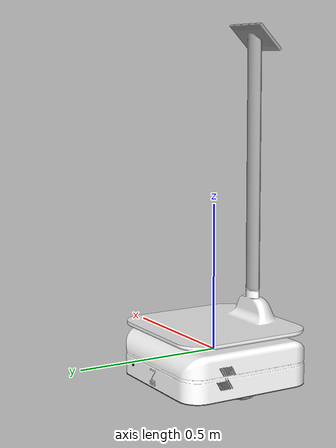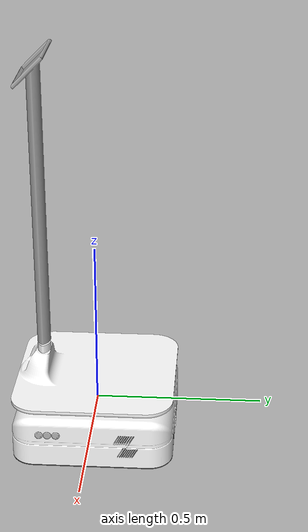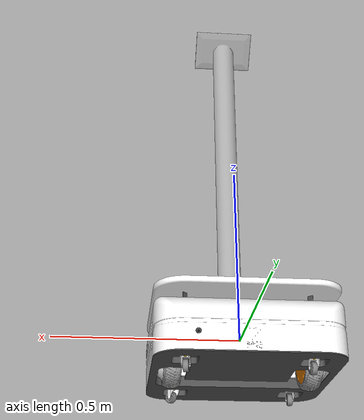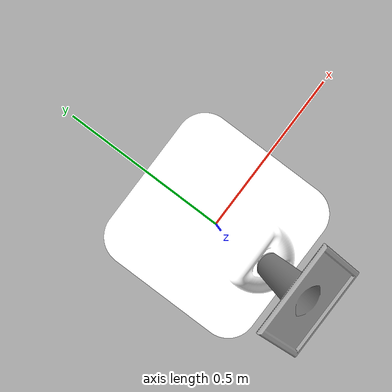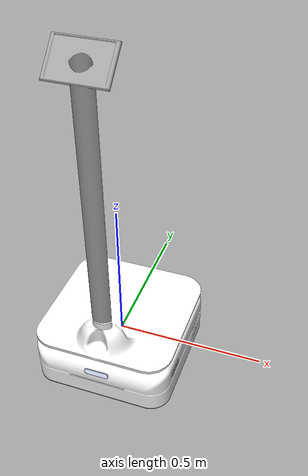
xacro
<?xml version="1.0" ?>
<!-- Generated using onshape-to-robot -->
<!-- Onshape https://cad.onshape.com/documents/7c4a8c9c2440f15a69d5cff4/w/82ee3b821ead890a7e99bd6c/e/7ba478e8d573ccb079962202 -->
<robot name="zero" xmlns:xacro="http://ros.org/wiki/xacro">

  <!-- Link base_sub -->
  <link name="base_sub">
    <inertial>
      <origin xyz="0.00360785 -0.00381731 -0.0662283" rpy="0 0 0"/>
      <mass value="12.3713"/>
      <inertia ixx="0.278501" ixy="0.00535023" ixz="-0.00306987" iyy="0.281975" iyz="0.00325242" izz="0.518455"/>
    </inertial>
    <!-- Part base -->
    <visual>
      <origin xyz="-0.16 0.16 -0.087" rpy="1.5708 -0 -0"/>
      <geometry>
        <mesh filename="package://zero_description/meshes/base.stl"/>
      </geometry>
      <material name="base_material">
        <color rgba="0.980392 0.713725 0.00392157 1"/>
      </material>
    </visual>
    <collision>
      <origin xyz="-0.16 0.16 -0.087" rpy="1.5708 -0 -0"/>
      <geometry>
        <mesh filename="package://zero_description/meshes/base.stl"/>
      </geometry>
    </collision>
    <!-- Part push_button___red__configuration_red -->
    <visual>
      <origin xyz="0.24 -0.15 0.00541176" rpy="0 1.5708 0"/>
      <geometry>
        <mesh filename="package://zero_description/meshes/push_button___red__configuration_red.stl"/>
      </geometry>
      <material name="push_button___red__configuration_red_material">
        <color rgba="0.701961 0.701961 0.701961 1"/>
      </material>
    </visual>
    <collision>
      <origin xyz="0.24 -0.15 0.00541176" rpy="0 1.5708 0"/>
      <geometry>
        <mesh filename="package://zero_description/meshes/push_button___red__configuration_red.stl"/>
      </geometry>
    </collision>
    <!-- Part base_2 -->
    <visual>
      <origin xyz="-0.16 -0.16 -0.087" rpy="1.5708 -0 -0"/>
      <geometry>
        <mesh filename="package://zero_description/meshes/base.stl"/>
      </geometry>
      <material name="base_2_material">
        <color rgba="0.980392 0.713725 0.00392157 1"/>
      </material>
    </visual>
    <collision>
      <origin xyz="-0.16 -0.16 -0.087" rpy="1.5708 -0 -0"/>
      <geometry>
        <mesh filename="package://zero_description/meshes/base.stl"/>
      </geometry>
    </collision>
    <!-- Part chassis_base -->
    <visual>
      <origin xyz="0 -0 -0.025" rpy="0 -0 -0"/>
      <geometry>
        <mesh filename="package://zero_description/meshes/chassis_base.stl"/>
      </geometry>
      <material name="chassis_base_material">
        <color rgba="0.301961 0.301961 0.301961 1"/>
      </material>
    </visual>
    <collision>
      <origin xyz="0 -0 -0.025" rpy="0 -0 -0"/>
      <geometry>
        <mesh filename="package://zero_description/meshes/chassis_base.stl"/>
      </geometry>
    </collision>
    <!-- Part push_button___red__configuration_red_2 -->
    <visual>
      <origin xyz="0.24 -0.125 0.00541176" rpy="0 1.5708 0"/>
      <geometry>
        <mesh filename="package://zero_description/meshes/push_button___red__configuration_red.stl"/>
      </geometry>
      <material name="push_button___red__configuration_red_2_material">
        <color rgba="0.701961 0.701961 0.701961 1"/>
      </material>
    </visual>
    <collision>
      <origin xyz="0.24 -0.125 0.00541176" rpy="0 1.5708 0"/>
      <geometry>
        <mesh filename="package://zero_description/meshes/push_button___red__configuration_red.stl"/>
      </geometry>
    </collision>
    <!-- Part component1 -->
    <visual>
      <origin xyz="0.135 0.242 -0.051618" rpy="-1.5708 -0 3.14159"/>
      <geometry>
        <mesh filename="package://zero_description/meshes/component1.stl"/>
      </geometry>
      <material name="component1_material">
        <color rgba="0.247059 0.247059 0.247059 1"/>
      </material>
    </visual>
    <collision>
      <origin xyz="0.135 0.242 -0.051618" rpy="-1.5708 -0 3.14159"/>
      <geometry>
        <mesh filename="package://zero_description/meshes/component1.stl"/>
      </geometry>
    </collision>
    <!-- Part push_button___red__configuration_red_3 -->
    <visual>
      <origin xyz="0.24 -0.1 0.00541176" rpy="0 1.5708 0"/>
      <geometry>
        <mesh filename="package://zero_description/meshes/push_button___red__configuration_red.stl"/>
      </geometry>
      <material name="push_button___red__configuration_red_3_material">
        <color rgba="0.701961 0.701961 0.701961 1"/>
      </material>
    </visual>
    <collision>
      <origin xyz="0.24 -0.1 0.00541176" rpy="0 1.5708 0"/>
      <geometry>
        <mesh filename="package://zero_description/meshes/push_button___red__configuration_red.stl"/>
      </geometry>
    </collision>
    <!-- Part part_1 -->
    <visual>
      <origin xyz="0 0 0.0269" rpy="-0 -0 3.14159"/>
      <geometry>
        <mesh filename="package://zero_description/meshes/part_1.stl"/>
      </geometry>
      <material name="part_1_material">
        <color rgba="0.34902 0.376471 0.4 1"/>
      </material>
    </visual>
    <collision>
      <origin xyz="0 0 0.0269" rpy="-0 -0 3.14159"/>
      <geometry>
        <mesh filename="package://zero_description/meshes/part_1.stl"/>
      </geometry>
    </collision>
    <!-- Part protective_cover -->
    <visual>
      <origin xyz="0 -0 -0.025" rpy="0 -0 -0"/>
      <geometry>
        <mesh filename="package://zero_description/meshes/protective_cover.stl"/>
      </geometry>
      <material name="protective_cover_material">
        <color rgba="1 1 1 1"/>
      </material>
    </visual>
    <collision>
      <origin xyz="0 -0 -0.025" rpy="0 -0 -0"/>
      <geometry>
        <mesh filename="package://zero_description/meshes/protective_cover.stl"/>
      </geometry>
    </collision>
    <!-- Part base_3 -->
    <visual>
      <origin xyz="0.16 0.16 -0.087" rpy="1.5708 -0 -0"/>
      <geometry>
        <mesh filename="package://zero_description/meshes/base.stl"/>
      </geometry>
      <material name="base_3_material">
        <color rgba="0.980392 0.713725 0.00392157 1"/>
      </material>
    </visual>
    <collision>
      <origin xyz="0.16 0.16 -0.087" rpy="1.5708 -0 -0"/>
      <geometry>
        <mesh filename="package://zero_description/meshes/base.stl"/>
      </geometry>
    </collision>
    <!-- Part payload_deck -->
    <visual>
      <origin xyz="0 -0 -0.0275" rpy="0 0 0"/>
      <geometry>
        <mesh filename="package://zero_description/meshes/payload_deck.stl"/>
      </geometry>
      <material name="payload_deck_material">
        <color rgba="1 1 1 1"/>
      </material>
    </visual>
    <collision>
      <origin xyz="0 -0 -0.0275" rpy="0 0 0"/>
      <geometry>
        <mesh filename="package://zero_description/meshes/payload_deck.stl"/>
      </geometry>
    </collision>
    <!-- Part base_4 -->
    <visual>
      <origin xyz="0.16 -0.16 -0.087" rpy="1.5708 -0 -0"/>
      <geometry>
        <mesh filename="package://zero_description/meshes/base.stl"/>
      </geometry>
      <material name="base_4_material">
        <color rgba="0.980392 0.713725 0.00392157 1"/>
      </material>
    </visual>
    <collision>
      <origin xyz="0.16 -0.16 -0.087" rpy="1.5708 -0 -0"/>
      <geometry>
        <mesh filename="package://zero_description/meshes/base.stl"/>
      </geometry>
    </collision>
    <!-- Part part_6 -->
    <visual>
      <origin xyz="0 -0.214788 -0.00197616" rpy="1.22173 0 -0"/>
      <geometry>
        <mesh filename="package://zero_description/meshes/part_6.stl"/>
      </geometry>
      <material name="part_6_material">
        <color rgba="0.866667 0.909804 1 1"/>
      </material>
    </visual>
    <collision>
      <origin xyz="0 -0.214788 -0.00197616" rpy="1.22173 0 -0"/>
      <geometry>
        <mesh filename="package://zero_description/meshes/part_6.stl"/>
      </geometry>
    </collision>
    <!-- Part part_1_2 -->
    <visual>
      <origin xyz="0 -0.214788 -0.00197616" rpy="1.22173 0 -0"/>
      <geometry>
        <mesh filename="package://zero_description/meshes/part_1__2.stl"/>
      </geometry>
      <material name="part_1_2_material">
        <color rgba="0.866667 0.909804 1 1"/>
      </material>
    </visual>
    <collision>
      <origin xyz="0 -0.214788 -0.00197616" rpy="1.22173 0 -0"/>
      <geometry>
        <mesh filename="package://zero_description/meshes/part_1__2.stl"/>
      </geometry>
    </collision>
    <!-- Part part_7 -->
    <visual>
      <origin xyz="0 -0.214788 -0.00197616" rpy="1.22173 0 -0"/>
      <geometry>
        <mesh filename="package://zero_description/meshes/part_7.stl"/>
      </geometry>
      <material name="part_7_material">
        <color rgba="0.866667 0.909804 1 1"/>
      </material>
    </visual>
    <collision>
      <origin xyz="0 -0.214788 -0.00197616" rpy="1.22173 0 -0"/>
      <geometry>
        <mesh filename="package://zero_description/meshes/part_7.stl"/>
      </geometry>
    </collision>
    <!-- Part part_2 -->
    <visual>
      <origin xyz="0 -0.214788 -0.00197616" rpy="1.22173 0 -0"/>
      <geometry>
        <mesh filename="package://zero_description/meshes/part_2.stl"/>
      </geometry>
      <material name="part_2_material">
        <color rgba="0.866667 0.909804 1 1"/>
      </material>
    </visual>
    <collision>
      <origin xyz="0 -0.214788 -0.00197616" rpy="1.22173 0 -0"/>
      <geometry>
        <mesh filename="package://zero_description/meshes/part_2.stl"/>
      </geometry>
    </collision>
    <!-- Part part_4 -->
    <visual>
      <origin xyz="0 -0.214788 -0.00197616" rpy="1.22173 0 -0"/>
      <geometry>
        <mesh filename="package://zero_description/meshes/part_4.stl"/>
      </geometry>
      <material name="part_4_material">
        <color rgba="0.866667 0.909804 1 1"/>
      </material>
    </visual>
    <collision>
      <origin xyz="0 -0.214788 -0.00197616" rpy="1.22173 0 -0"/>
      <geometry>
        <mesh filename="package://zero_description/meshes/part_4.stl"/>
      </geometry>
    </collision>
    <!-- Part part_5 -->
    <visual>
      <origin xyz="0 -0.214788 -0.00197616" rpy="1.22173 0 -0"/>
      <geometry>
        <mesh filename="package://zero_description/meshes/part_5.stl"/>
      </geometry>
      <material name="part_5_material">
        <color rgba="0.866667 0.909804 1 1"/>
      </material>
    </visual>
    <collision>
      <origin xyz="0 -0.214788 -0.00197616" rpy="1.22173 0 -0"/>
      <geometry>
        <mesh filename="package://zero_description/meshes/part_5.stl"/>
      </geometry>
    </collision>
    <!-- Part part_3 -->
    <visual>
      <origin xyz="0 -0.214788 -0.00197616" rpy="1.22173 0 -0"/>
      <geometry>
        <mesh filename="package://zero_description/meshes/part_3.stl"/>
      </geometry>
      <material name="part_3_material">
        <color rgba="0.866667 0.909804 1 1"/>
      </material>
    </visual>
    <collision>
      <origin xyz="0 -0.214788 -0.00197616" rpy="1.22173 0 -0"/>
      <geometry>
        <mesh filename="package://zero_description/meshes/part_3.stl"/>
      </geometry>
    </collision>
  </link>
  <!-- Frame payload (dummy link + fixed joint) -->
  <link name="payload">
    <origin xyz="0 0 0" rpy="0 -0 0"/>
    <inertial>
      <origin xyz="0 0 0" rpy="0 0 0"/>
      <mass value="1e-9"/>
      <inertia ixx="0" ixy="0" ixz="0" iyy="0" iyz="0" izz="0"/>
    </inertial>
  </link>
  <joint name="payload_frame" type="fixed">
    <origin xyz="-3.45e-10 -0.00737819 -0.0275" rpy="0 0 0"/>
    <parent link="base_sub"/>
    <child link="payload"/>
    <axis xyz="0 0 0"/>
  </joint>
  <!-- Link hub_motor_assembly -->
  <link name="hub_motor_assembly">
    <inertial>
      <origin xyz="5.29946e-06 1.95136e-05 0.0548583" rpy="0 0 0"/>
      <mass value="2.33473"/>
      <inertia ixx="0.00477916" ixy="1.76e-10" ixz="9.3291e-08" iyy="0.00477934" iyz="2.52658e-06" izz="0.00768357"/>
    </inertial>
    <!-- Part hub_rim_back -->
    <visual>
      <origin xyz="0 0 0.0326" rpy="-1.5708 -0 -2.70526"/>
      <geometry>
        <mesh filename="package://zero_description/meshes/hub_rim_back.stl"/>
      </geometry>
      <material name="hub_rim_back_material">
        <color rgba="0.972549 0.529412 0.00392157 1"/>
      </material>
    </visual>
    <collision>
      <origin xyz="0 0 0.0326" rpy="-1.5708 -0 -2.70526"/>
      <geometry>
        <mesh filename="package://zero_description/meshes/hub_rim_back.stl"/>
      </geometry>
    </collision>
    <!-- Part hub_rim_face -->
    <visual>
      <origin xyz="0 -0 0.0879" rpy="3.14159 0 0"/>
      <geometry>
        <mesh filename="package://zero_description/meshes/hub_rim_face.stl"/>
      </geometry>
      <material name="hub_rim_face_material">
        <color rgba="0.917647 0.917647 0.917647 1"/>
      </material>
    </visual>
    <collision>
      <origin xyz="0 -0 0.0879" rpy="3.14159 0 0"/>
      <geometry>
        <mesh filename="package://zero_description/meshes/hub_rim_face.stl"/>
      </geometry>
    </collision>
    <!-- Part shaft -->
    <visual>
      <origin xyz="0 0 -0.0255" rpy="1.5708 0 0"/>
      <geometry>
        <mesh filename="package://zero_description/meshes/shaft.stl"/>
      </geometry>
      <material name="shaft_material">
        <color rgba="0.498039 0.498039 0.498039 1"/>
      </material>
    </visual>
    <collision>
      <origin xyz="0 0 -0.0255" rpy="1.5708 0 0"/>
      <geometry>
        <mesh filename="package://zero_description/meshes/shaft.stl"/>
      </geometry>
    </collision>
    <!-- Part hub_tire -->
    <visual>
      <origin xyz="0 -0 0.05295" rpy="1.5708 0 0"/>
      <geometry>
        <mesh filename="package://zero_description/meshes/hub_tire.stl"/>
      </geometry>
      <material name="hub_tire_material">
        <color rgba="0.647059 0.647059 0.647059 1"/>
      </material>
    </visual>
    <collision>
      <origin xyz="0 -0 0.05295" rpy="1.5708 0 0"/>
      <geometry>
        <mesh filename="package://zero_description/meshes/hub_tire.stl"/>
      </geometry>
    </collision>
  </link>
  <!-- Joint from base_sub to hub_motor_assembly -->
  <joint name="left_wheel" type="continuous">
    <origin xyz="0.13 -0 -0.041" rpy="-1.5708 0.91029 -1.5708"/>
    <parent link="base_sub"/>
    <child link="hub_motor_assembly"/>
    <axis xyz="0 0 1"/>
    <limit effort="10" velocity="10"/>
  </joint>
  <!-- Link hub_motor_assembly_2 -->
  <link name="hub_motor_assembly_2">
    <inertial>
      <origin xyz="5.29946e-06 1.95136e-05 0.0548583" rpy="0 0 0"/>
      <mass value="2.33473"/>
      <inertia ixx="0.00477916" ixy="1.76e-10" ixz="9.3291e-08" iyy="0.00477934" iyz="2.52658e-06" izz="0.00768357"/>
    </inertial>
    <!-- Part hub_rim_back_2 -->
    <visual>
      <origin xyz="0 0 0.0326" rpy="-1.5708 0 -2.70526"/>
      <geometry>
        <mesh filename="package://zero_description/meshes/hub_rim_back.stl"/>
      </geometry>
      <material name="hub_rim_back_2_material">
        <color rgba="0.972549 0.529412 0.00392157 1"/>
      </material>
    </visual>
    <collision>
      <origin xyz="0 0 0.0326" rpy="-1.5708 0 -2.70526"/>
      <geometry>
        <mesh filename="package://zero_description/meshes/hub_rim_back.stl"/>
      </geometry>
    </collision>
    <!-- Part hub_rim_face_2 -->
    <visual>
      <origin xyz="0 0 0.0879" rpy="3.14159 -0 -0"/>
      <geometry>
        <mesh filename="package://zero_description/meshes/hub_rim_face.stl"/>
      </geometry>
      <material name="hub_rim_face_2_material">
        <color rgba="0.917647 0.917647 0.917647 1"/>
      </material>
    </visual>
    <collision>
      <origin xyz="0 0 0.0879" rpy="3.14159 -0 -0"/>
      <geometry>
        <mesh filename="package://zero_description/meshes/hub_rim_face.stl"/>
      </geometry>
    </collision>
    <!-- Part shaft_2 -->
    <visual>
      <origin xyz="-0 0 -0.0255" rpy="1.5708 -0 -0"/>
      <geometry>
        <mesh filename="package://zero_description/meshes/shaft.stl"/>
      </geometry>
      <material name="shaft_2_material">
        <color rgba="0.498039 0.498039 0.498039 1"/>
      </material>
    </visual>
    <collision>
      <origin xyz="-0 0 -0.0255" rpy="1.5708 -0 -0"/>
      <geometry>
        <mesh filename="package://zero_description/meshes/shaft.stl"/>
      </geometry>
    </collision>
    <!-- Part hub_tire_2 -->
    <visual>
      <origin xyz="0 0 0.05295" rpy="1.5708 -0 -0"/>
      <geometry>
        <mesh filename="package://zero_description/meshes/hub_tire.stl"/>
      </geometry>
      <material name="hub_tire_2_material">
        <color rgba="0.647059 0.647059 0.647059 1"/>
      </material>
    </visual>
    <collision>
      <origin xyz="0 0 0.05295" rpy="1.5708 -0 -0"/>
      <geometry>
        <mesh filename="package://zero_description/meshes/hub_tire.stl"/>
      </geometry>
    </collision>
  </link>
  <!-- Joint from base_sub to hub_motor_assembly_2 -->
  <joint name="right_wheel" type="continuous">
    <origin xyz="-0.13 -0 -0.041" rpy="1.5708 0.798618 -1.5708"/>
    <parent link="base_sub"/>
    <child link="hub_motor_assembly_2"/>
    <axis xyz="0 0 1"/>
    <limit effort="10" velocity="10"/>
  </joint>
  <!-- Link punch -->
  <link name="punch">
    <inertial>
      <origin xyz="-0.00684314 -0.000166299 -0.0109139" rpy="0 0 0"/>
      <mass value="0.0243434"/>
      <inertia ixx="3.93636e-06" ixy="-2.9053e-08" ixz="-1.04424e-06" iyy="3.83891e-06" iyz="-5.7083e-08" izz="3.4357e-06"/>
    </inertial>
    <!-- Part punch -->
    <visual>
      <origin xyz="-0 0 0.00025" rpy="1.5708 -0 -0"/>
      <geometry>
        <mesh filename="package://zero_description/meshes/punch.stl"/>
      </geometry>
      <material name="punch_material">
        <color rgba="0.917647 0.917647 0.917647 1"/>
      </material>
    </visual>
    <collision>
      <origin xyz="-0 0 0.00025" rpy="1.5708 -0 -0"/>
      <geometry>
        <mesh filename="package://zero_description/meshes/punch.stl"/>
      </geometry>
    </collision>
  </link>
  <!-- Link tire -->
  <link name="tire">
    <inertial>
      <origin xyz="3.4391e-08 -3.8281e-08 0.00659339" rpy="0 0 0"/>
      <mass value="0.0101114"/>
      <inertia ixx="8.73151e-07" ixy="-0" ixz="1e-12" iyy="8.73161e-07" iyz="-1e-12" izz="1.4096e-06"/>
    </inertial>
    <!-- Part tire -->
    <visual>
      <origin xyz="0.014 -0.025 0.00659339" rpy="3.14159 -0 -0"/>
      <geometry>
        <mesh filename="package://zero_description/meshes/tire.stl"/>
      </geometry>
      <material name="tire_material">
        <color rgba="0.498039 0.498039 0.498039 1"/>
      </material>
    </visual>
    <collision>
      <origin xyz="0.014 -0.025 0.00659339" rpy="3.14159 -0 -0"/>
      <geometry>
        <mesh filename="package://zero_description/meshes/tire.stl"/>
      </geometry>
    </collision>
  </link>
  <!-- Joint from punch to tire -->
  <joint name="backleft_casterwheel" type="revolute">
    <origin xyz="-0.014 0.0065 -0.025" rpy="1.5708 1.32457 0"/>
    <parent link="punch"/>
    <child link="tire"/>
    <axis xyz="0 0 1"/>
    <limit effort="10" velocity="10" lower="-3.141592653589793" upper="3.141592653589793"/>
  </joint>
  <!-- Joint from base_sub to punch -->
  <joint name="backleft_casterpunch" type="revolute">
    <origin xyz="0.16 0.16 -0.086" rpy="0 0 1.33217"/>
    <parent link="base_sub"/>
    <child link="punch"/>
    <axis xyz="0 0 1"/>
    <limit effort="10" velocity="10" lower="-3.141592653589793" upper="3.141592653589793"/>
  </joint>
  <!-- Link punch_2 -->
  <link name="punch_2">
    <inertial>
      <origin xyz="-0.00684314 -0.000166299 -0.0109139" rpy="0 0 0"/>
      <mass value="0.0243434"/>
      <inertia ixx="3.93636e-06" ixy="-2.9053e-08" ixz="-1.04424e-06" iyy="3.83891e-06" iyz="-5.7083e-08" izz="3.4357e-06"/>
    </inertial>
    <!-- Part punch_2 -->
    <visual>
      <origin xyz="0 -0 0.00025" rpy="1.5708 -0 -0"/>
      <geometry>
        <mesh filename="package://zero_description/meshes/punch.stl"/>
      </geometry>
      <material name="punch_2_material">
        <color rgba="0.917647 0.917647 0.917647 1"/>
      </material>
    </visual>
    <collision>
      <origin xyz="0 -0 0.00025" rpy="1.5708 -0 -0"/>
      <geometry>
        <mesh filename="package://zero_description/meshes/punch.stl"/>
      </geometry>
    </collision>
  </link>
  <!-- Link tire_2 -->
  <link name="tire_2">
    <inertial>
      <origin xyz="3.4391e-08 -3.8281e-08 -0.00823677" rpy="0 0 0"/>
      <mass value="0.0101114"/>
      <inertia ixx="8.73151e-07" ixy="-0" ixz="1e-12" iyy="8.73161e-07" iyz="-1e-12" izz="1.4096e-06"/>
    </inertial>
    <!-- Part tire_2 -->
    <visual>
      <origin xyz="0.014 -0.025 -0.00823677" rpy="3.14159 0 -0"/>
      <geometry>
        <mesh filename="package://zero_description/meshes/tire.stl"/>
      </geometry>
      <material name="tire_2_material">
        <color rgba="0.498039 0.498039 0.498039 1"/>
      </material>
    </visual>
    <collision>
      <origin xyz="0.014 -0.025 -0.00823677" rpy="3.14159 0 -0"/>
      <geometry>
        <mesh filename="package://zero_description/meshes/tire.stl"/>
      </geometry>
    </collision>
  </link>
  <!-- Joint from punch_2 to tire_2 -->
  <joint name="frontleft_casterwheel" type="revolute">
    <origin xyz="-0.014 0.0067 -0.025" rpy="1.5708 -0.0120917 3.14159"/>
    <parent link="punch_2"/>
    <child link="tire_2"/>
    <axis xyz="0 0 1"/>
    <limit effort="10" velocity="10" lower="-3.141592653589793" upper="3.141592653589793"/>
  </joint>
  <!-- Joint from base_sub to punch_2 -->
  <joint name="frontleft_casterpunch" type="revolute">
    <origin xyz="0.16 -0.16 -0.086" rpy="0 -0 2.30943"/>
    <parent link="base_sub"/>
    <child link="punch_2"/>
    <axis xyz="0 0 1"/>
    <limit effort="10" velocity="10" lower="-3.141592653589793" upper="3.141592653589793"/>
  </joint>
  <!-- Link punch_3 -->
  <link name="punch_3">
    <inertial>
      <origin xyz="-0.00684314 -0.000166299 -0.0109139" rpy="0 0 0"/>
      <mass value="0.0243434"/>
      <inertia ixx="3.93636e-06" ixy="-2.9053e-08" ixz="-1.04424e-06" iyy="3.83891e-06" iyz="-5.7083e-08" izz="3.4357e-06"/>
    </inertial>
    <!-- Part punch_3 -->
    <visual>
      <origin xyz="0 0 0.00025" rpy="1.5708 0 -0"/>
      <geometry>
        <mesh filename="package://zero_description/meshes/punch.stl"/>
      </geometry>
      <material name="punch_3_material">
        <color rgba="0.917647 0.917647 0.917647 1"/>
      </material>
    </visual>
    <collision>
      <origin xyz="0 0 0.00025" rpy="1.5708 0 -0"/>
      <geometry>
        <mesh filename="package://zero_description/meshes/punch.stl"/>
      </geometry>
    </collision>
  </link>
  <!-- Link tire_3 -->
  <link name="tire_3">
    <inertial>
      <origin xyz="-4.5036e-08 -2.4898e-08 -0.000106608" rpy="0 0 0"/>
      <mass value="0.0101114"/>
      <inertia ixx="8.73161e-07" ixy="-2e-12" ixz="-1e-12" iyy="8.73151e-07" iyz="-1e-12" izz="1.4096e-06"/>
    </inertial>
    <!-- Part tire_3 -->
    <visual>
      <origin xyz="-0.0275085 -0.0080175 -0.000106614" rpy="3.14159 0 -1.79769"/>
      <geometry>
        <mesh filename="package://zero_description/meshes/tire.stl"/>
      </geometry>
      <material name="tire_3_material">
        <color rgba="0.498039 0.498039 0.498039 1"/>
      </material>
    </visual>
    <collision>
      <origin xyz="-0.0275085 -0.0080175 -0.000106614" rpy="3.14159 0 -1.79769"/>
      <geometry>
        <mesh filename="package://zero_description/meshes/tire.stl"/>
      </geometry>
    </collision>
  </link>
  <!-- Joint from punch_3 to tire_3 -->
  <joint name="backright_casterwheel" type="revolute">
    <origin xyz="-0.014 0 -0.025" rpy="1.5708 0 -0"/>
    <parent link="punch_3"/>
    <child link="tire_3"/>
    <axis xyz="0 0 1"/>
    <limit effort="10" velocity="10" lower="-3.141592653589793" upper="3.141592653589793"/>
  </joint>
  <!-- Joint from base_sub to punch_3 -->
  <joint name="backright_casterpunch" type="revolute">
    <origin xyz="-0.16 0.16 -0.086" rpy="0 0 1.72927"/>
    <parent link="base_sub"/>
    <child link="punch_3"/>
    <axis xyz="0 0 1"/>
    <limit effort="10" velocity="10" lower="-3.141592653589793" upper="3.141592653589793"/>
  </joint>
  <!-- Link punch_4 -->
  <link name="punch_4">
    <inertial>
      <origin xyz="-0.000331782 -0.00683711 -0.0109139" rpy="0 0 0"/>
      <mass value="0.0243434"/>
      <inertia ixx="3.84364e-06" ixy="3.5813e-08" ixz="-1.9006e-08" iyy="3.93163e-06" iyz="-1.04563e-06" izz="3.4357e-06"/>
    </inertial>
    <!-- Part punch_4 -->
    <visual>
      <origin xyz="0 0 0.00025" rpy="1.5708 0 1.49801"/>
      <geometry>
        <mesh filename="package://zero_description/meshes/punch.stl"/>
      </geometry>
      <material name="punch_4_material">
        <color rgba="0.917647 0.917647 0.917647 1"/>
      </material>
    </visual>
    <collision>
      <origin xyz="0 0 0.00025" rpy="1.5708 0 1.49801"/>
      <geometry>
        <mesh filename="package://zero_description/meshes/punch.stl"/>
      </geometry>
    </collision>
  </link>
  <!-- Link tire_4 -->
  <link name="tire_4">
    <inertial>
      <origin xyz="3.4391e-08 -3.8281e-08 0.00823678" rpy="0 0 0"/>
      <mass value="0.0101114"/>
      <inertia ixx="8.73151e-07" ixy="-0" ixz="1e-12" iyy="8.73161e-07" iyz="-1e-12" izz="1.4096e-06"/>
    </inertial>
    <!-- Part tire_4 -->
    <visual>
      <origin xyz="0.014 -0.025 0.00823677" rpy="3.14159 0 -0"/>
      <geometry>
        <mesh filename="package://zero_description/meshes/tire.stl"/>
      </geometry>
      <material name="tire_4_material">
        <color rgba="0.498039 0.498039 0.498039 1"/>
      </material>
    </visual>
    <collision>
      <origin xyz="0.014 -0.025 0.00823677" rpy="3.14159 0 -0"/>
      <geometry>
        <mesh filename="package://zero_description/meshes/tire.stl"/>
      </geometry>
    </collision>
  </link>
  <!-- Joint from punch_4 to tire_4 -->
  <joint name="frontright_casterwheel" type="revolute">
    <origin xyz="0.00716019 -0.0145592 -0.025" rpy="-1.5708 0 1.49801"/>
    <parent link="punch_4"/>
    <child link="tire_4"/>
    <axis xyz="0 0 1"/>
    <limit effort="10" velocity="10" lower="-3.141592653589793" upper="3.141592653589793"/>
  </joint>
  <!-- Joint from base_sub to punch_4 -->
  <joint name="frontright_casterpunch" type="revolute">
    <origin xyz="-0.16 -0.16 -0.086" rpy="0 -0 -0"/>
    <parent link="base_sub"/>
    <child link="punch_4"/>
    <axis xyz="0 0 1"/>
    <limit effort="10" velocity="10" lower="-3.141592653589793" upper="3.141592653589793"/>
  </joint>
  <!-- Link rotating_screen_mount -->
  <link name="rotating_screen_mount">
    <inertial>
      <origin xyz="0 0 0" rpy="0 0 0"/>
      <mass value="1e-09"/>
      <inertia ixx="1e-09" ixy="0" ixz="0" iyy="1e-09" iyz="0" izz="1e-09"/>
    </inertial>
    <!-- Part rotating_screen_mount -->
    <visual>
      <origin xyz="0 -0.16 0.216" rpy="3.14159 -0 0"/>
      <geometry>
        <mesh filename="package://zero_description/meshes/rotating_screen_mount.stl"/>
      </geometry>
      <material name="rotating_screen_mount_material">
        <color rgba="0.647059 0.647059 0.647059 1"/>
      </material>
    </visual>
    <collision>
      <origin xyz="0 -0.16 0.216" rpy="3.14159 -0 0"/>
      <geometry>
        <mesh filename="package://zero_description/meshes/rotating_screen_mount.stl"/>
      </geometry>
    </collision>
  </link>
  <!-- Frame screen (dummy link + fixed joint) -->
  <link name="screen">
    <origin xyz="0 0 0" rpy="0 -0 0"/>
    <inertial>
      <origin xyz="0 0 0" rpy="0 0 0"/>
      <mass value="1e-9"/>
      <inertia ixx="0" ixy="0" ixz="0" iyy="0" iyz="0" izz="0"/>
    </inertial>
  </link>
  <joint name="screen_frame" type="fixed">
    <origin xyz="-0 -0.156986 0.218643" rpy="3.14159 -0 0"/>
    <parent link="rotating_screen_mount"/>
    <child link="screen"/>
    <axis xyz="0 0 0"/>
  </joint>
  <!-- Joint from base_sub to rotating_screen_mount -->
  <joint name="screen_mount" type="revolute">
    <origin xyz="0 -0.16 0.1935" rpy="-3.14159 -0 3.14159"/>
    <parent link="base_sub"/>
    <child link="rotating_screen_mount"/>
    <axis xyz="0 0 1"/>
    <limit effort="10" velocity="10" lower="-3.141592653589793" upper="3.141592653589793"/>
  </joint>
</robot>
